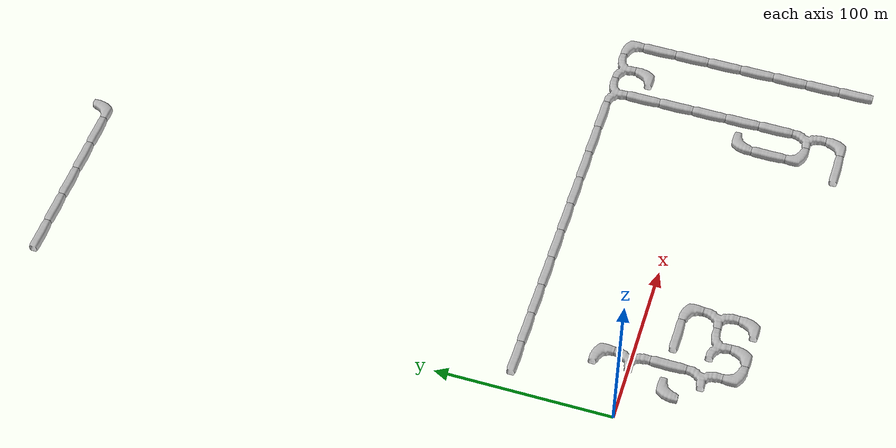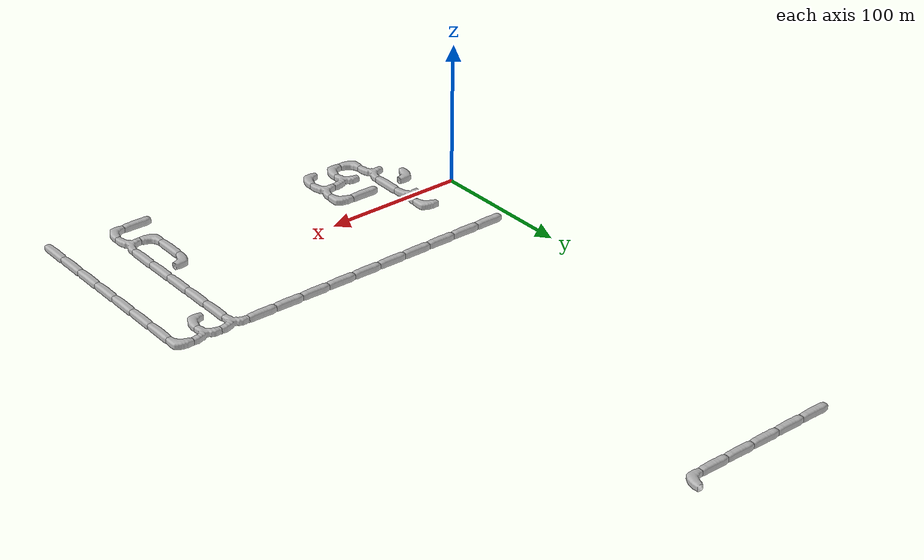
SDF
<sdf version="1.6">
 <world name="cave_4000_8">
  <include>
   <static>true</static>
   <name>cave_2_1</name>
   <pose>40 20 0 0 0 3.141592653589793</pose>
   <uri>model://cave_L_20m</uri>
  </include>
  <include>
   <static>true</static>
   <name>cave_2_0</name>
   <pose>40 0 0 0 0 1.5707963267948966</pose>
   <uri>model://cave_3way_20m</uri>
  </include>
  <include>
   <static>true</static>
   <name>cave_2_-1</name>
   <pose>40 -20 0 0 0 0.0</pose>
   <uri>model://cave_straight_20m</uri>
  </include>
  <include>
   <static>true</static>
   <name>cave_2_-2</name>
   <pose>40 -40 0 0 0 1.5707963267948966</pose>
   <uri>model://cave_3way_20m</uri>
  </include>
  <include>
   <static>true</static>
   <name>cave_2_-3</name>
   <pose>40 -60 0 0 0 0.0</pose>
   <uri>model://cave_L_20m</uri>
  </include>
  <include>
   <static>true</static>
   <name>cave_3_-3</name>
   <pose>60 -60 0 0 0 1.5707963267948966</pose>
   <uri>model://cave_L_20m</uri>
  </include>
  <include>
   <static>true</static>
   <name>cave_3_-2</name>
   <pose>60 -40 0 0 0 3.141592653589793</pose>
   <uri>model://cave_3way_20m</uri>
  </include>
  <include>
   <static>true</static>
   <name>cave_4_-2</name>
   <pose>80 -40 0 0 0 1.5707963267948966</pose>
   <uri>model://cave_3way_20m</uri>
  </include>
  <include>
   <static>true</static>
   <name>cave_4_-3</name>
   <pose>80 -60 0 0 0 1.5707963267948966</pose>
   <uri>model://cave_L_20m</uri>
  </include>
  <include>
   <static>true</static>
   <name>cave_4_-1</name>
   <pose>80 -20 0 0 0 3.141592653589793</pose>
   <uri>model://cave_L_20m</uri>
  </include>
  <include>
   <static>true</static>
   <name>cave_3_-1</name>
   <pose>60 -20 0 0 0 1.5707963267948966</pose>
   <uri>model://cave_straight_20m</uri>
  </include>
  <include>
   <static>true</static>
   <name>cave_1_-1</name>
   <pose>20 -20 0 0 0 -1.5707963267948966</pose>
   <uri>model://cave_L_20m</uri>
  </include>
  <include>
   <static>true</static>
   <name>cave_1_17</name>
   <pose>20 340 0 0 0 1.5707963267948966</pose>
   <uri>model://cave_straight_20m</uri>
  </include>
  <include>
   <static>true</static>
   <name>cave_2_17</name>
   <pose>40 340 0 0 0 1.5707963267948966</pose>
   <uri>model://cave_straight_20m</uri>
  </include>
  <include>
   <static>true</static>
   <name>cave_3_17</name>
   <pose>60 340 0 0 0 1.5707963267948966</pose>
   <uri>model://cave_straight_20m</uri>
  </include>
  <include>
   <static>true</static>
   <name>cave_4_17</name>
   <pose>80 340 0 0 0 1.5707963267948966</pose>
   <uri>model://cave_straight_20m</uri>
  </include>
  <include>
   <static>true</static>
   <name>cave_5_17</name>
   <pose>100 340 0 0 0 1.5707963267948966</pose>
   <uri>model://cave_straight_20m</uri>
  </include>
  <include>
   <static>true</static>
   <name>cave_6_17</name>
   <pose>120 340 0 0 0 1.5707963267948966</pose>
   <uri>model://cave_L_20m</uri>
  </include>
  <include>
   <static>true</static>
   <name>cave_1_3</name>
   <pose>20 60 0 0 0 1.5707963267948966</pose>
   <uri>model://cave_straight_20m</uri>
  </include>
  <include>
   <static>true</static>
   <name>cave_2_3</name>
   <pose>40 60 0 0 0 1.5707963267948966</pose>
   <uri>model://cave_straight_20m</uri>
  </include>
  <include>
   <static>true</static>
   <name>cave_3_3</name>
   <pose>60 60 0 0 0 1.5707963267948966</pose>
   <uri>model://cave_straight_20m</uri>
  </include>
  <include>
   <static>true</static>
   <name>cave_4_3</name>
   <pose>80 60 0 0 0 1.5707963267948966</pose>
   <uri>model://cave_straight_20m</uri>
  </include>
  <include>
   <static>true</static>
   <name>cave_5_3</name>
   <pose>100 60 0 0 0 1.5707963267948966</pose>
   <uri>model://cave_straight_20m</uri>
  </include>
  <include>
   <static>true</static>
   <name>cave_6_3</name>
   <pose>120 60 0 0 0 1.5707963267948966</pose>
   <uri>model://cave_straight_20m</uri>
  </include>
  <include>
   <static>true</static>
   <name>cave_7_3</name>
   <pose>140 60 0 0 0 1.5707963267948966</pose>
   <uri>model://cave_straight_20m</uri>
  </include>
  <include>
   <static>true</static>
   <name>cave_8_3</name>
   <pose>160 60 0 0 0 1.5707963267948966</pose>
   <uri>model://cave_straight_20m</uri>
  </include>
  <include>
   <static>true</static>
   <name>cave_9_3</name>
   <pose>180 60 0 0 0 1.5707963267948966</pose>
   <uri>model://cave_straight_20m</uri>
  </include>
  <include>
   <static>true</static>
   <name>cave_10_3</name>
   <pose>200 60 0 0 0 1.5707963267948966</pose>
   <uri>model://cave_straight_20m</uri>
  </include>
  <include>
   <static>true</static>
   <name>cave_11_3</name>
   <pose>220 60 0 0 0 3.141592653589793</pose>
   <uri>model://cave_3way_20m</uri>
  </include>
  <include>
   <static>true</static>
   <name>cave_12_3</name>
   <pose>240 60 0 0 0 3.141592653589793</pose>
   <uri>model://cave_3way_20m</uri>
  </include>
  <include>
   <static>true</static>
   <name>cave_13_3</name>
   <pose>260 60 0 0 0 3.141592653589793</pose>
   <uri>model://cave_L_20m</uri>
  </include>
  <include>
   <static>true</static>
   <name>cave_13_2</name>
   <pose>260 40 0 0 0 0.0</pose>
   <uri>model://cave_straight_20m</uri>
  </include>
  <include>
   <static>true</static>
   <name>cave_13_1</name>
   <pose>260 20 0 0 0 0.0</pose>
   <uri>model://cave_straight_20m</uri>
  </include>
  <include>
   <static>true</static>
   <name>cave_13_0</name>
   <pose>260 0 0 0 0 0.0</pose>
   <uri>model://cave_straight_20m</uri>
  </include>
  <include>
   <static>true</static>
   <name>cave_13_-1</name>
   <pose>260 -20 0 0 0 0.0</pose>
   <uri>model://cave_straight_20m</uri>
  </include>
  <include>
   <static>true</static>
   <name>cave_13_-2</name>
   <pose>260 -40 0 0 0 0.0</pose>
   <uri>model://cave_straight_20m</uri>
  </include>
  <include>
   <static>true</static>
   <name>cave_13_-3</name>
   <pose>260 -60 0 0 0 0.0</pose>
   <uri>model://cave_straight_20m</uri>
  </include>
  <include>
   <static>true</static>
   <name>cave_13_-4</name>
   <pose>260 -80 0 0 0 0.0</pose>
   <uri>model://cave_straight_20m</uri>
  </include>
  <include>
   <static>true</static>
   <name>cave_12_2</name>
   <pose>240 40 0 0 0 1.5707963267948966</pose>
   <uri>model://cave_L_20m</uri>
  </include>
  <include>
   <static>true</static>
   <name>cave_11_2</name>
   <pose>220 40 0 0 0 0.0</pose>
   <uri>model://cave_straight_20m</uri>
  </include>
  <include>
   <static>true</static>
   <name>cave_11_1</name>
   <pose>220 20 0 0 0 0.0</pose>
   <uri>model://cave_straight_20m</uri>
  </include>
  <include>
   <static>true</static>
   <name>cave_11_0</name>
   <pose>220 0 0 0 0 0.0</pose>
   <uri>model://cave_straight_20m</uri>
  </include>
  <include>
   <static>true</static>
   <name>cave_11_-1</name>
   <pose>220 -20 0 0 0 0.0</pose>
   <uri>model://cave_straight_20m</uri>
  </include>
  <include>
   <static>true</static>
   <name>cave_11_-2</name>
   <pose>220 -40 0 0 0 0.0</pose>
   <uri>model://cave_straight_20m</uri>
  </include>
  <include>
   <static>true</static>
   <name>cave_11_-3</name>
   <pose>220 -60 0 0 0 1.5707963267948966</pose>
   <uri>model://cave_3way_20m</uri>
  </include>
  <include>
   <static>true</static>
   <name>cave_11_-4</name>
   <pose>220 -80 0 0 0 1.5707963267948966</pose>
   <uri>model://cave_L_20m</uri>
  </include>
  <include>
   <static>true</static>
   <name>cave_10_-4</name>
   <pose>200 -80 0 0 0 1.5707963267948966</pose>
   <uri>model://cave_straight_20m</uri>
  </include>
  <include>
   <static>true</static>
   <name>cave_10_-3</name>
   <pose>200 -60 0 0 0 0.0</pose>
   <uri>model://cave_L_20m</uri>
  </include>
  <include>
   <static>true</static>
   <name>cave_10_-2</name>
   <pose>200 -40 0 0 0 0.0</pose>
   <uri>model://cave_straight_20m</uri>
  </include>
  <include>
   <static>true</static>
   <name>cave_10_-1</name>
   <pose>200 -20 0 0 0 -1.5707963267948966</pose>
   <uri>model://cave_L_20m</uri>
  </include>
 </world>
</sdf>
